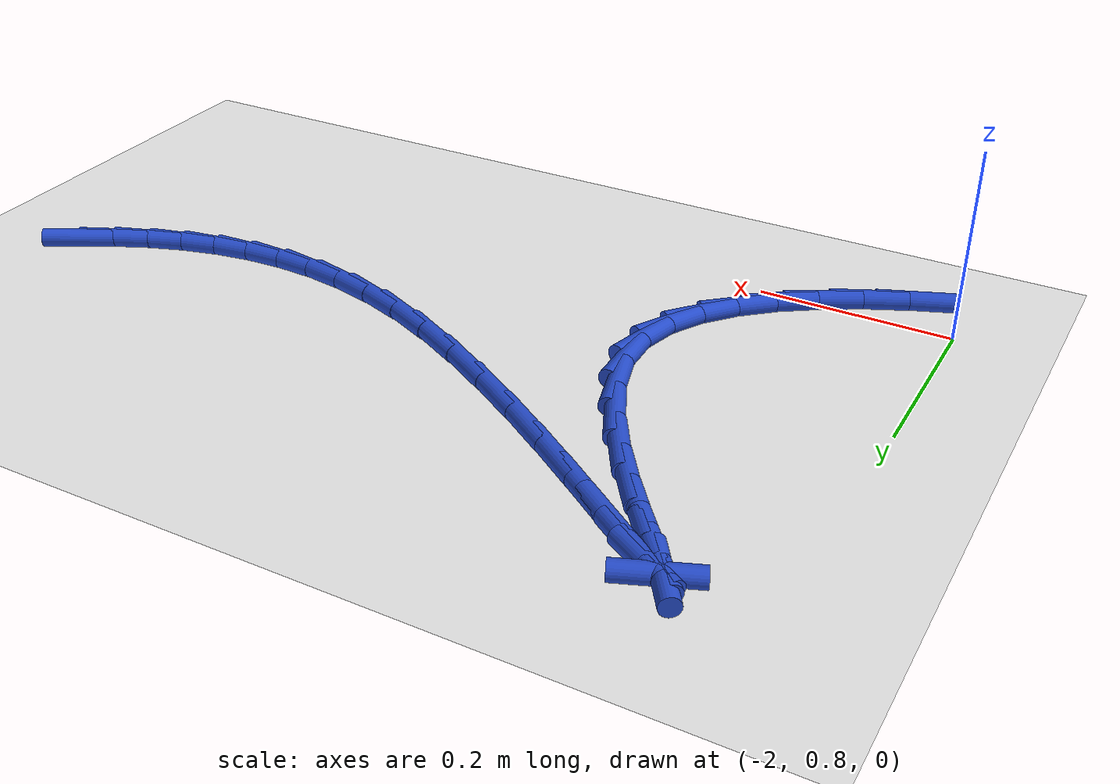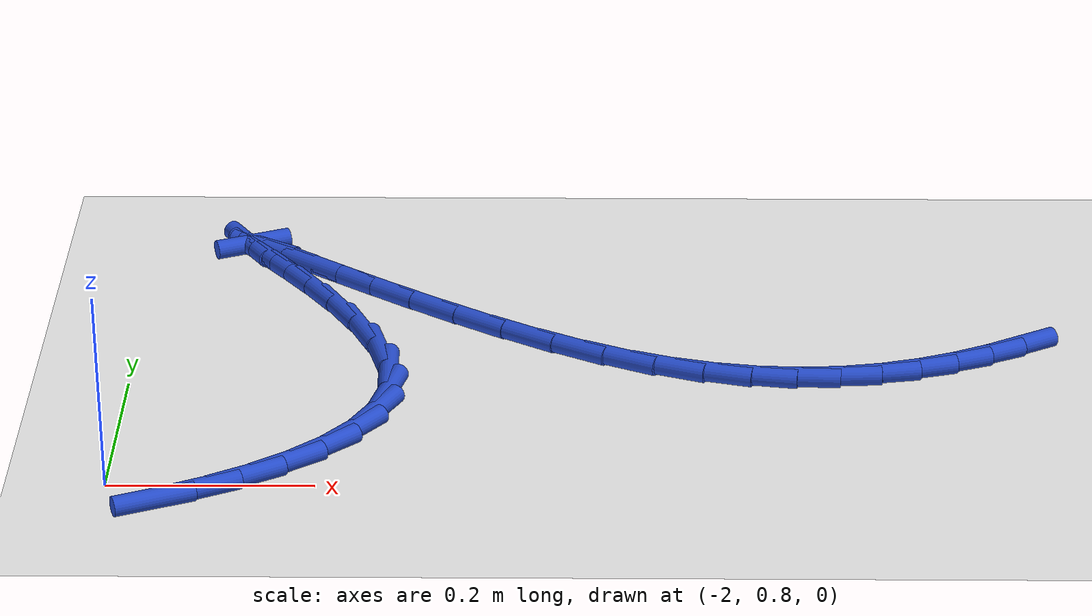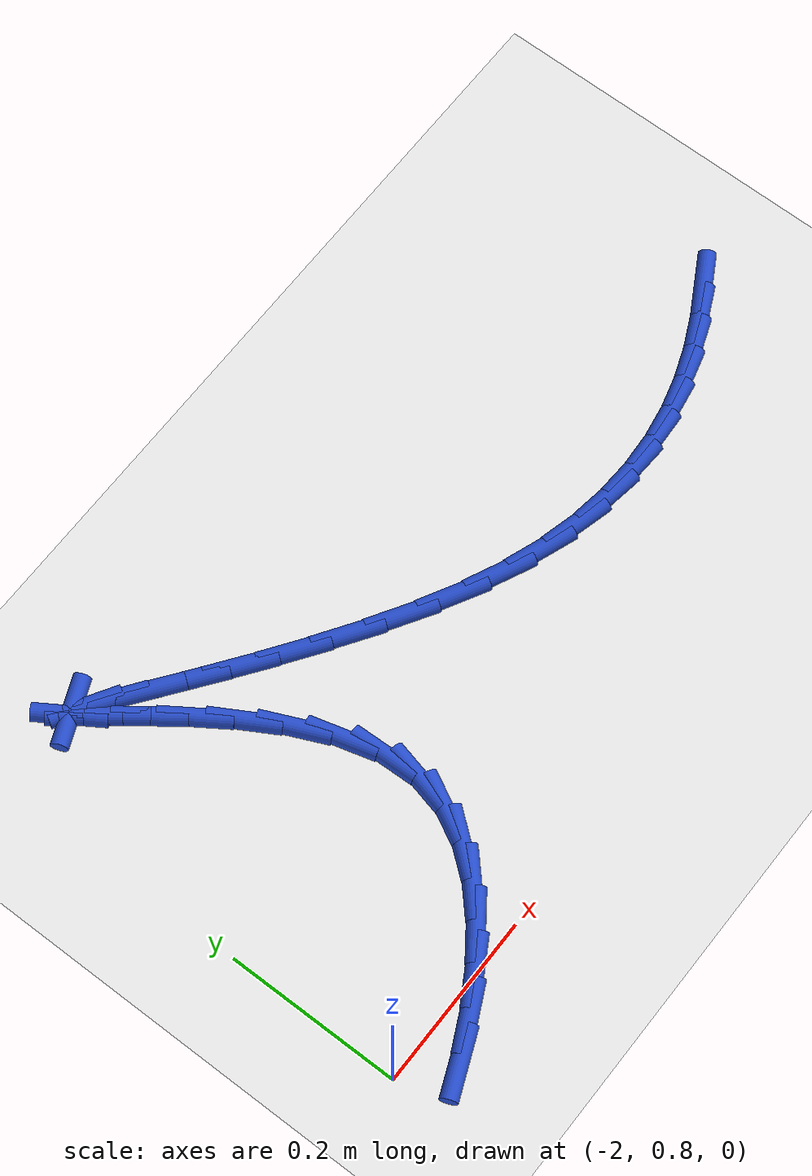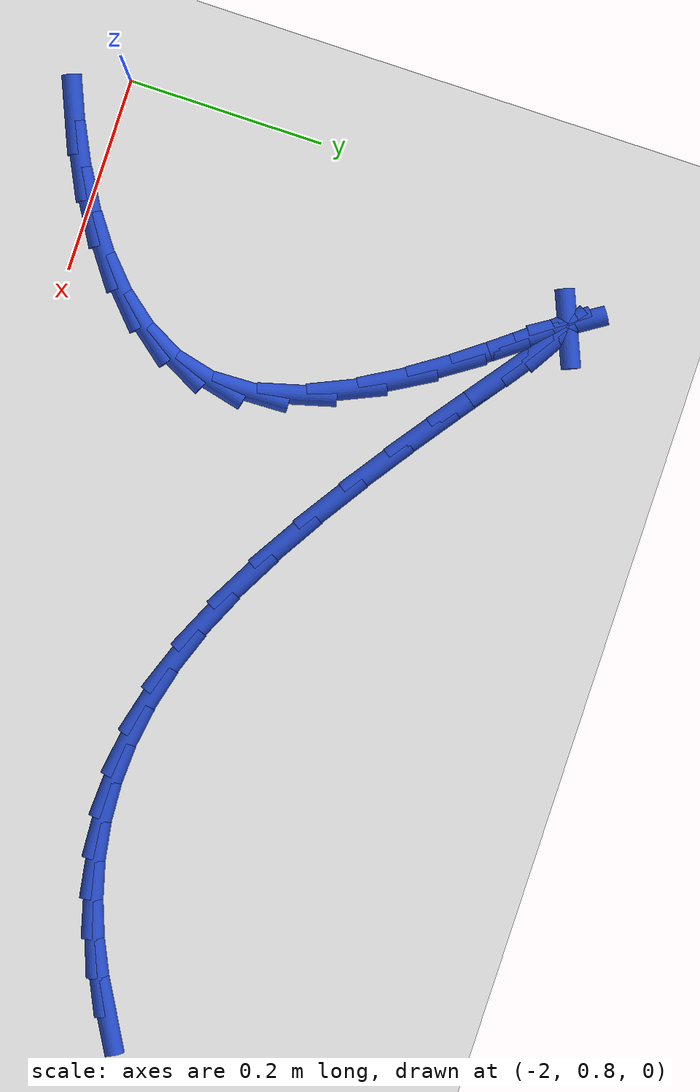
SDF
<sdf version="1.6">
 <world name="default">
  <model name="ground_plane">
   <static>1</static>
   <link name="link">
    <collision name="collision">
     <geometry><plane><normal>0 0 1</normal><size>100 100</size></plane></geometry>
     <surface><friction><ode><mu>100</mu><mu2>50</mu2></ode></friction></surface>
    </collision>
    <visual name="visual">
     <cast_shadows>0</cast_shadows>
     <geometry><plane><normal>0 0 1</normal><size>100 100</size></plane></geometry>
     <material>
      <script><uri>file://media/materials/scripts/gazebo.material</uri><name>Gazebo/WhiteGlow</name></script>
     </material>
    </visual>
   </link>
  </model>
  <model name="line">
   <link name="link_55">
    <pose>-1.106151665191157 1.0703143509283741 0.01 0 1.57 0.5136627318660358</pose>
    <collision name="collision">
     <geometry><cylinder><radius>0.01</radius><length>0.08</length></cylinder></geometry>
    </collision>
    <visual name="visual">
     <material>
      <script><name>Gazebo/Blue</name><uri>file://media/materials/scripts/gazebo.material</uri></script>
     </material>
     <geometry><cylinder><radius>0.01</radius><length>0.08</length></cylinder></geometry>
    </visual>
   </link>
   <link name="link_56">
    <pose>-1.1402993432505182 1.0510490045870344 0.01 0 1.57 0.4398864103742831</pose>
    <collision name="collision">
     <geometry><cylinder><radius>0.01</radius><length>0.08</length></cylinder></geometry>
    </collision>
    <visual name="visual">
     <material>
      <script><name>Gazebo/Blue</name><uri>file://media/materials/scripts/gazebo.material</uri></script>
     </material>
     <geometry><cylinder><radius>0.01</radius><length>0.08</length></cylinder></geometry>
    </visual>
   </link>
   <link name="link_57">
    <pose>-1.1755710197870393 1.0344486803211155 0.01 0 1.57 0.3545110695305239</pose>
    <collision name="collision">
     <geometry><cylinder><radius>0.01</radius><length>0.08</length></cylinder></geometry>
    </collision>
    <visual name="visual">
     <material>
      <script><name>Gazebo/Blue</name><uri>file://media/materials/scripts/gazebo.material</uri></script>
     </material>
     <geometry><cylinder><radius>0.01</radius><length>0.08</length></cylinder></geometry>
    </visual>
   </link>
   <link name="link_58">
    <pose>-1.2121060496302407 1.0209252714628494 0.01 0 1.57 0.2608852014860669</pose>
    <collision name="collision">
     <geometry><cylinder><radius>0.01</radius><length>0.08</length></cylinder></geometry>
    </collision>
    <visual name="visual">
     <material>
      <script><name>Gazebo/Blue</name><uri>file://media/materials/scripts/gazebo.material</uri></script>
     </material>
     <geometry><cylinder><radius>0.01</radius><length>0.08</length></cylinder></geometry>
    </visual>
   </link>
   <link name="link_59">
    <pose>-1.2499836514662708 1.010813102866321 0.01 0 1.57 0.16060725590039027</pose>
    <collision name="collision">
     <geometry><cylinder><radius>0.01</radius><length>0.08</length></cylinder></geometry>
    </collision>
    <visual name="visual">
     <material>
      <script><name>Gazebo/Blue</name><uri>file://media/materials/scripts/gazebo.material</uri></script>
     </material>
     <geometry><cylinder><radius>0.01</radius><length>0.08</length></cylinder></geometry>
    </visual>
   </link>
   <link name="link_60">
    <pose>-1.2892830439812752 1.0044464993856144 0.01 0 1.57 0.055987773939713166</pose>
    <collision name="collision">
     <geometry><cylinder><radius>0.01</radius><length>0.08</length></cylinder></geometry>
    </collision>
    <visual name="visual">
     <material>
      <script><name>Gazebo/Blue</name><uri>file://media/materials/scripts/gazebo.material</uri></script>
     </material>
     <geometry><cylinder><radius>0.01</radius><length>0.08</length></cylinder></geometry>
    </visual>
   </link>
   <link name="link_61">
    <pose>-1.3300834458614017 1.0021597858748152 0.01 0 1.57 -0.05015774647665107</pose>
    <collision name="collision">
     <geometry><cylinder><radius>0.01</radius><length>0.08</length></cylinder></geometry>
    </collision>
    <visual name="visual">
     <material>
      <script><name>Gazebo/Blue</name><uri>file://media/materials/scripts/gazebo.material</uri></script>
     </material>
     <geometry><cylinder><radius>0.01</radius><length>0.08</length></cylinder></geometry>
    </visual>
   </link>
   <link name="link_62">
    <pose>-1.3724640757927964 1.0042872871880086 0.01 0 1.57 -0.154881014318404</pose>
    <collision name="collision">
     <geometry><cylinder><radius>0.01</radius><length>0.08</length></cylinder></geometry>
    </collision>
    <visual name="visual">
     <material>
      <script><name>Gazebo/Blue</name><uri>file://media/materials/scripts/gazebo.material</uri></script>
     </material>
     <geometry><cylinder><radius>0.01</radius><length>0.08</length></cylinder></geometry>
    </visual>
   </link>
   <link name="link_63">
    <pose>-1.4165041524616062 1.011163328179279 0.01 0 1.57 -0.25552238043071607</pose>
    <collision name="collision">
     <geometry><cylinder><radius>0.01</radius><length>0.08</length></cylinder></geometry>
    </collision>
    <visual name="visual">
     <material>
      <script><name>Gazebo/Blue</name><uri>file://media/materials/scripts/gazebo.material</uri></script>
     </material>
     <geometry><cylinder><radius>0.01</radius><length>0.08</length></cylinder></geometry>
    </visual>
   </link>
   <link name="link_64">
    <pose>-1.4622828945539783 1.0231222337027115 0.01 0 1.57 -0.35003652410434044</pose>
    <collision name="collision">
     <geometry><cylinder><radius>0.01</radius><length>0.08</length></cylinder></geometry>
    </collision>
    <visual name="visual">
     <material>
      <script><name>Gazebo/Blue</name><uri>file://media/materials/scripts/gazebo.material</uri></script>
     </material>
     <geometry><cylinder><radius>0.01</radius><length>0.08</length></cylinder></geometry>
    </visual>
   </link>
   <link name="link_65">
    <pose>-1.509879520756059 1.0404983286123908 0.01 0 1.57 -0.43590057355352124</pose>
    <collision name="collision">
     <geometry><cylinder><radius>0.01</radius><length>0.08</length></cylinder></geometry>
    </collision>
    <visual name="visual">
     <material>
      <script><name>Gazebo/Blue</name><uri>file://media/materials/scripts/gazebo.material</uri></script>
     </material>
     <geometry><cylinder><radius>0.01</radius><length>0.08</length></cylinder></geometry>
    </visual>
   </link>
   <link name="link_66">
    <pose>-1.5592972686204927 1.0635162332546528 0.01 0 1.57 -0.5027985200760697</pose>
    <collision name="collision">
     <geometry><cylinder><radius>0.01</radius><length>0.08</length></cylinder></geometry>
    </collision>
    <visual name="visual">
     <material>
      <script><name>Gazebo/Blue</name><uri>file://media/materials/scripts/gazebo.material</uri></script>
     </material>
     <geometry><cylinder><radius>0.01</radius><length>0.08</length></cylinder></geometry>
    </visual>
   </link>
   <link name="link_67">
    <pose>-1.6097516355563133 1.0912631982011933 0.01 0 1.57 -0.5512653810575215</pose>
    <collision name="collision">
     <geometry><cylinder><radius>0.01</radius><length>0.08</length></cylinder></geometry>
    </collision>
    <visual name="visual">
     <material>
      <script><name>Gazebo/Blue</name><uri>file://media/materials/scripts/gazebo.material</uri></script>
     </material>
     <geometry><cylinder><radius>0.01</radius><length>0.08</length></cylinder></geometry>
    </visual>
   </link>
   <link name="link_68">
    <pose>-1.6599918701969307 1.1221532859563463 0.01 0 1.57 -0.5869463190346283</pose>
    <collision name="collision">
     <geometry><cylinder><radius>0.01</radius><length>0.08</length></cylinder></geometry>
    </collision>
    <visual name="visual">
     <material>
      <script><name>Gazebo/Blue</name><uri>file://media/materials/scripts/gazebo.material</uri></script>
     </material>
     <geometry><cylinder><radius>0.01</radius><length>0.08</length></cylinder></geometry>
    </visual>
   </link>
   <link name="link_69">
    <pose>-1.7087611356379866 1.1545917724889714 0.01 0 1.57 -0.6131000767120406</pose>
    <collision name="collision">
     <geometry><cylinder><radius>0.01</radius><length>0.08</length></cylinder></geometry>
    </collision>
    <visual name="visual">
     <material>
      <script><name>Gazebo/Blue</name><uri>file://media/materials/scripts/gazebo.material</uri></script>
     </material>
     <geometry><cylinder><radius>0.01</radius><length>0.08</length></cylinder></geometry>
    </visual>
   </link>
   <link name="link_70">
    <pose>-1.7548025949751254 1.1869839337679284 0.01 0 1.57 -0.6313472474206536</pose>
    <collision name="collision">
     <geometry><cylinder><radius>0.01</radius><length>0.08</length></cylinder></geometry>
    </collision>
    <visual name="visual">
     <material>
      <script><name>Gazebo/Blue</name><uri>file://media/materials/scripts/gazebo.material</uri></script>
     </material>
     <geometry><cylinder><radius>0.01</radius><length>0.08</length></cylinder></geometry>
    </visual>
   </link>
   <link name="link_71">
    <pose>-1.7968594113039897 1.217735045762076 0.01 0 1.57 -0.6418272974156196</pose>
    <collision name="collision">
     <geometry><cylinder><radius>0.01</radius><length>0.08</length></cylinder></geometry>
    </collision>
    <visual name="visual">
     <material>
      <script><name>Gazebo/Blue</name><uri>file://media/materials/scripts/gazebo.material</uri></script>
     </material>
     <geometry><cylinder><radius>0.01</radius><length>0.08</length></cylinder></geometry>
    </visual>
   </link>
   <link name="link_72">
    <pose>-1.8336747477202242 1.2452503844402754 0.01 0 1.57 -0.6423829465537895</pose>
    <collision name="collision">
     <geometry><cylinder><radius>0.01</radius><length>0.08</length></cylinder></geometry>
    </collision>
    <visual name="visual">
     <material>
      <script><name>Gazebo/Blue</name><uri>file://media/materials/scripts/gazebo.material</uri></script>
     </material>
     <geometry><cylinder><radius>0.01</radius><length>0.08</length></cylinder></geometry>
    </visual>
   </link>
   <link name="link_73">
    <pose>-1.8639917673194715 1.2679352257713854 0.01 0 1.57 -0.6244630019457666</pose>
    <collision name="collision">
     <geometry><cylinder><radius>0.01</radius><length>0.08</length></cylinder></geometry>
    </collision>
    <visual name="visual">
     <material>
      <script><name>Gazebo/Blue</name><uri>file://media/materials/scripts/gazebo.material</uri></script>
     </material>
     <geometry><cylinder><radius>0.01</radius><length>0.08</length></cylinder></geometry>
    </visual>
   </link>
   <link name="link_74">
    <pose>-1.8865536331973756 1.284194845724266 0.01 0 1.57 -0.5463538575202391</pose>
    <collision name="collision">
     <geometry><cylinder><radius>0.01</radius><length>0.08</length></cylinder></geometry>
    </collision>
    <visual name="visual">
     <material>
      <script><name>Gazebo/Blue</name><uri>file://media/materials/scripts/gazebo.material</uri></script>
     </material>
     <geometry><cylinder><radius>0.01</radius><length>0.08</length></cylinder></geometry>
    </visual>
   </link>
   <link name="link_75">
    <pose>-1.900103508449579 1.2924345202677765 0.01 0 1.57 0.39683879631669167</pose>
    <collision name="collision">
     <geometry><cylinder><radius>0.01</radius><length>0.08</length></cylinder></geometry>
    </collision>
    <visual name="visual">
     <material>
      <script><name>Gazebo/Blue</name><uri>file://media/materials/scripts/gazebo.material</uri></script>
     </material>
     <geometry><cylinder><radius>0.01</radius><length>0.08</length></cylinder></geometry>
    </visual>
   </link>
   <link name="link_76">
    <pose>-1.9033845561717266 1.2910595253707775 0.01 0 1.57 -1.0004700013713097</pose>
    <collision name="collision">
     <geometry><cylinder><radius>0.01</radius><length>0.08</length></cylinder></geometry>
    </collision>
    <visual name="visual">
     <material>
      <script><name>Gazebo/Blue</name><uri>file://media/materials/scripts/gazebo.material</uri></script>
     </material>
     <geometry><cylinder><radius>0.01</radius><length>0.08</length></cylinder></geometry>
    </visual>
   </link>
   <link name="link_77">
    <pose>-1.895498882998265 1.2787656118330502 0.01 0 1.57 -0.9125357397764899</pose>
    <collision name="collision">
     <geometry><cylinder><radius>0.01</radius><length>0.08</length></cylinder></geometry>
    </collision>
    <visual name="visual">
     <material>
      <script><name>Gazebo/Blue</name><uri>file://media/materials/scripts/gazebo.material</uri></script>
     </material>
     <geometry><cylinder><radius>0.01</radius><length>0.08</length></cylinder></geometry>
    </visual>
   </link>
   <link name="link_78">
    <pose>-1.8781961816769603 1.2563910878359081 0.01 0 1.57 -0.910970178132614</pose>
    <collision name="collision">
     <geometry><cylinder><radius>0.01</radius><length>0.08</length></cylinder></geometry>
    </collision>
    <visual name="visual">
     <material>
      <script><name>Gazebo/Blue</name><uri>file://media/materials/scripts/gazebo.material</uri></script>
     </material>
     <geometry><cylinder><radius>0.01</radius><length>0.08</length></cylinder></geometry>
    </visual>
   </link>
   <link name="link_79">
    <pose>-1.8544107570756778 1.2257329081668717 0.01 0 1.57 -0.9364383968849335</pose>
    <collision name="collision">
     <geometry><cylinder><radius>0.01</radius><length>0.08</length></cylinder></geometry>
    </collision>
    <visual name="visual">
     <material>
      <script><name>Gazebo/Blue</name><uri>file://media/materials/scripts/gazebo.material</uri></script>
     </material>
     <geometry><cylinder><radius>0.01</radius><length>0.08</length></cylinder></geometry>
    </visual>
   </link>
   <link name="link_80">
    <pose>-1.827082458195306 1.1885925141995897 0.01 0 1.57 -0.9819574475228673</pose>
    <collision name="collision">
     <geometry><cylinder><radius>0.01</radius><length>0.08</length></cylinder></geometry>
    </collision>
    <visual name="visual">
     <material>
      <script><name>Gazebo/Blue</name><uri>file://media/materials/scripts/gazebo.material</uri></script>
     </material>
     <geometry><cylinder><radius>0.01</radius><length>0.08</length></cylinder></geometry>
    </visual>
   </link>
   <link name="link_81">
    <pose>-1.7991511340367339 1.1467713473077128 0.01 0 1.57 -1.0507845125400161</pose>
    <collision name="collision">
     <geometry><cylinder><radius>0.01</radius><length>0.08</length></cylinder></geometry>
    </collision>
    <visual name="visual">
     <material>
      <script><name>Gazebo/Blue</name><uri>file://media/materials/scripts/gazebo.material</uri></script>
     </material>
     <geometry><cylinder><radius>0.01</radius><length>0.08</length></cylinder></geometry>
    </visual>
   </link>
   <link name="link_82">
    <pose>-1.7735566336008488 1.1020708488648898 0.01 0 1.57 -1.1530851067784011</pose>
    <collision name="collision">
     <geometry><cylinder><radius>0.01</radius><length>0.08</length></cylinder></geometry>
    </collision>
    <visual name="visual">
     <material>
      <script><name>Gazebo/Blue</name><uri>file://media/materials/scripts/gazebo.material</uri></script>
     </material>
     <geometry><cylinder><radius>0.01</radius><length>0.08</length></cylinder></geometry>
    </visual>
   </link>
   <link name="link_83">
    <pose>-1.7532388058885389 1.0562924602447692 0.01 0 1.57 -1.3083985900580626</pose>
    <collision name="collision">
     <geometry><cylinder><radius>0.01</radius><length>0.08</length></cylinder></geometry>
    </collision>
    <visual name="visual">
     <material>
      <script><name>Gazebo/Blue</name><uri>file://media/materials/scripts/gazebo.material</uri></script>
     </material>
     <geometry><cylinder><radius>0.01</radius><length>0.08</length></cylinder></geometry>
    </visual>
   </link>
   <link name="link_84">
    <pose>-1.7411374999006934 1.0112376228210014 0.01 0 1.57 -1.5423621697080085</pose>
    <collision name="collision">
     <geometry><cylinder><radius>0.01</radius><length>0.08</length></cylinder></geometry>
    </collision>
    <visual name="visual">
     <material>
      <script><name>Gazebo/Blue</name><uri>file://media/materials/scripts/gazebo.material</uri></script>
     </material>
     <geometry><cylinder><radius>0.01</radius><length>0.08</length></cylinder></geometry>
    </visual>
   </link>
   <link name="link_85">
    <pose>-1.739924888828515 0.9686028349617017 0.01 0 1.57 1.3310786358385158</pose>
    <collision name="collision">
     <geometry><cylinder><radius>0.01</radius><length>0.08</length></cylinder></geometry>
    </collision>
    <visual name="visual">
     <material>
      <script><name>Gazebo/Blue</name><uri>file://media/materials/scripts/gazebo.material</uri></script>
     </material>
     <geometry><cylinder><radius>0.01</radius><length>0.08</length></cylinder></geometry>
    </visual>
   </link>
   <link name="link_86">
    <pose>-1.7495959610123908 0.9290349976696382 0.01 0 1.57 1.0901877376337397</pose>
    <collision name="collision">
     <geometry><cylinder><radius>0.01</radius><length>0.08</length></cylinder></geometry>
    </collision>
    <visual name="visual">
     <material>
      <script><name>Gazebo/Blue</name><uri>file://media/materials/scripts/gazebo.material</uri></script>
     </material>
     <geometry><cylinder><radius>0.01</radius><length>0.08</length></cylinder></geometry>
    </visual>
   </link>
   <link name="link_87">
    <pose>-1.7686046793599413 0.8925768488716976 0.01 0 1.57 0.8936535427953306</pose>
    <collision name="collision">
     <geometry><cylinder><radius>0.01</radius><length>0.08</length></cylinder></geometry>
    </collision>
    <visual name="visual">
     <material>
      <script><name>Gazebo/Blue</name><uri>file://media/materials/scripts/gazebo.material</uri></script>
     </material>
     <geometry><cylinder><radius>0.01</radius><length>0.08</length></cylinder></geometry>
    </visual>
   </link>
   <link name="link_88">
    <pose>-1.7953865267228992 0.859263881340231 0.01 0 1.57 0.7401495848288032</pose>
    <collision name="collision">
     <geometry><cylinder><radius>0.01</radius><length>0.08</length></cylinder></geometry>
    </collision>
    <visual name="visual">
     <material>
      <script><name>Gazebo/Blue</name><uri>file://media/materials/scripts/gazebo.material</uri></script>
     </material>
     <geometry><cylinder><radius>0.01</radius><length>0.08</length></cylinder></geometry>
    </visual>
   </link>
   <link name="link_89">
    <pose>-1.8283769859529977 0.8291315878475869 0.01 0 1.57 0.6208527608973046</pose>
    <collision name="collision">
     <geometry><cylinder><radius>0.01</radius><length>0.08</length></cylinder></geometry>
    </collision>
    <visual name="visual">
     <material>
      <script><name>Gazebo/Blue</name><uri>file://media/materials/scripts/gazebo.material</uri></script>
     </material>
     <geometry><cylinder><radius>0.01</radius><length>0.08</length></cylinder></geometry>
    </visual>
   </link>
   <link name="link_90">
    <pose>-1.8660115399019683 0.8022154611661156 0.01 0 1.57 0.5265072182999656</pose>
    <collision name="collision">
     <geometry><cylinder><radius>0.01</radius><length>0.08</length></cylinder></geometry>
    </collision>
    <visual name="visual">
     <material>
      <script><name>Gazebo/Blue</name><uri>file://media/materials/scripts/gazebo.material</uri></script>
     </material>
     <geometry><cylinder><radius>0.01</radius><length>0.08</length></cylinder></geometry>
    </visual>
   </link>
   <link name="link_91">
    <pose>-1.906725671421544 0.7785509940681665 0.01 0 1.57 0.45033566413475923</pose>
    <collision name="collision">
     <geometry><cylinder><radius>0.01</radius><length>0.08</length></cylinder></geometry>
    </collision>
    <visual name="visual">
     <material>
      <script><name>Gazebo/Blue</name><uri>file://media/materials/scripts/gazebo.material</uri></script>
     </material>
     <geometry><cylinder><radius>0.01</radius><length>0.08</length></cylinder></geometry>
    </visual>
   </link>
   <link name="link_92">
    <pose>-1.9490247653534432 0.7581006882842364 0.01 0 1.57 0.39360893431757493</pose>
    <collision name="collision">
     <geometry><cylinder><radius>0.01</radius><length>0.08</length></cylinder></geometry>
    </collision>
    <visual name="visual">
     <material>
      <script><name>Gazebo/Blue</name><uri>file://media/materials/scripts/gazebo.material</uri></script>
     </material>
     <geometry><cylinder><radius>0.01</radius><length>0.08</length></cylinder></geometry>
    </visual>
   </link>
  </model>
 </world>
</sdf>
